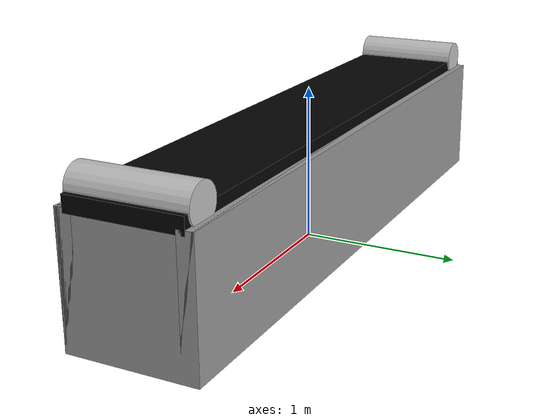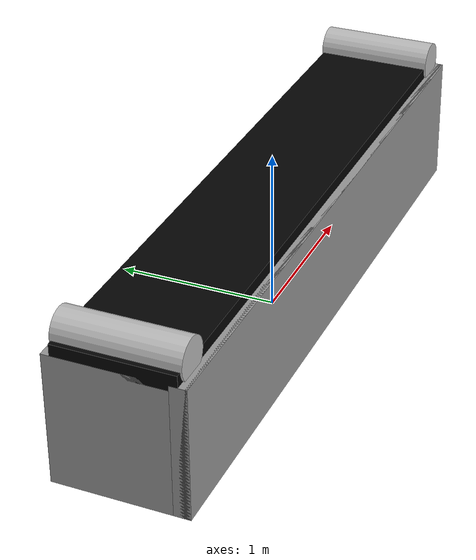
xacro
<?xml version="1.0"?>

<robot xmlns:xacro="http://www.ros.org/wiki/xacro"
       name="conveyor">

  <!-- ================= MATERIALS ================= -->

  <material name="frame_material">
    <color rgba="0.60 0.60 0.60 1"/>
  </material>

  <material name="belt_material">
    <color rgba="0.015 0.015 0.015 1"/>
  </material>

  <material name="roller_material">
    <color rgba="0.75 0.75 0.75 1"/>
  </material>

  <!-- ================= WORLD ================= -->
  <link name="world"/>

  <!-- ================= BASE ================= -->

  <link name="conveyor_base">
    <inertial>
      <mass value="10.0"/>
      <origin xyz="0 0 0.4"/>
      <inertia
        ixx="0.60"
        ixy="0"
        ixz="0"
        iyy="13.35"
        iyz="0"
        izz="13.35"/>
    </inertial>

    <visual>
      <origin xyz="0 0 0.4"/>
      <geometry>
        <box size="4.0 0.8 0.8"/>
      </geometry>
      <material name="frame_material"/>
    </visual>

    <collision>
      <origin xyz="0 0 0.4"/>
      <geometry>
        <box size="4.0 0.8 0.8"/>
      </geometry>
    </collision>
  </link>

  <!-- ================= FIX CONVEYOR TO WORLD ================= -->

  <joint name="conveyor_world_joint" type="fixed">
    <parent link="world"/>
    <child link="conveyor_base"/>
    <origin xyz="0 0 0" rpy="0 0 0"/>
  </joint>

  <!-- ================= BELT ================= -->

  <link name="belt">

    <inertial>
      <mass value="8.0"/>
      <origin xyz="0 0 0"/>
      <inertia
        ixx="0.34"
        ixy="0"
        ixz="0"
        iyy="10.67"
        iyz="0"
        izz="10.67"/>
    </inertial>

    <visual>
      <geometry>
        <box size="4.0 0.7 0.1"/>
      </geometry>
      <material name="belt_material"/>
    </visual>

    <collision>
      <geometry>
        <box size="4.0 0.7 0.1"/>
      </geometry>

      <surface>
        <friction>
          <ode>
            <mu>5.0</mu>
            <mu2>5.0</mu2>
          </ode>
        </friction>
      </surface>
    </collision>

  </link>

  <joint name="belt_joint" type="fixed">
    <parent link="conveyor_base"/>
    <child link="belt"/>
    <origin xyz="0 0 0.82" rpy="0 0 0"/>
  </joint>

  <!-- ================= LEFT FRAME ================= -->

  <link name="left_frame">

    <inertial>
      <mass value="5.0"/>
      <origin xyz="0 0 0"/>
      <inertia
        ixx="0.347"
        ixy="0"
        ixz="0"
        iyy="6.67"
        iyz="0"
        izz="6.67"/>
    </inertial>

    <visual>
      <geometry>
        <box size="4.0 0.1 0.8"/>
      </geometry>
      <material name="frame_material"/>
    </visual>

    <collision>
      <geometry>
        <box size="4.0 0.1 0.8"/>
      </geometry>
    </collision>

  </link>

  <joint name="left_frame_joint" type="fixed">
    <parent link="conveyor_base"/>
    <child link="left_frame"/>
    <origin xyz="0 0.35 0.4" rpy="0 0 0"/>
  </joint>

  <!-- ================= RIGHT FRAME ================= -->

  <link name="right_frame">

    <inertial>
      <mass value="5.0"/>
      <origin xyz="0 0 0"/>
      <inertia
        ixx="0.347"
        ixy="0"
        ixz="0"
        iyy="6.67"
        iyz="0"
        izz="6.67"/>
    </inertial>

    <visual>
      <geometry>
        <box size="4.0 0.1 0.8"/>
      </geometry>
      <material name="frame_material"/>
    </visual>

    <collision>
      <geometry>
        <box size="4.0 0.1 0.8"/>
      </geometry>
    </collision>

  </link>

  <joint name="right_frame_joint" type="fixed">
    <parent link="conveyor_base"/>
    <child link="right_frame"/>
    <origin xyz="0 -0.35 0.4" rpy="0 0 0"/>
  </joint>

  <!-- ================= FRONT ROLLER ================= -->

  <link name="front_roller">

    <inertial>
      <mass value="2.0"/>
      <origin xyz="0 0 0"/>
      <inertia
        ixx="0.095"
        ixy="0"
        ixz="0"
        iyy="0.014"
        iyz="0"
        izz="0.095"/>
    </inertial>

    <visual>
      <geometry>
        <cylinder radius="0.12" length="0.72"/>
      </geometry>
      <material name="roller_material"/>
    </visual>

    <collision>
      <geometry>
        <cylinder radius="0.12" length="0.72"/>
      </geometry>
    </collision>

  </link>

  <joint name="front_roller_joint" type="continuous">
    <parent link="conveyor_base"/>
    <child link="front_roller"/>
    <origin xyz="-1.85 0 0.88" rpy="1.5708 0 0"/>
    <axis xyz="0 1 0"/>
  </joint>

  <!-- ================= REAR ROLLER ================= -->

  <link name="rear_roller">

    <inertial>
      <mass value="2.0"/>
      <origin xyz="0 0 0"/>
      <inertia
        ixx="0.095"
        ixy="0"
        ixz="0"
        iyy="0.014"
        iyz="0"
        izz="0.095"/>
    </inertial>

    <visual>
      <geometry>
        <cylinder radius="0.12" length="0.72"/>
      </geometry>
      <material name="roller_material"/>
    </visual>

    <collision>
      <geometry>
        <cylinder radius="0.12" length="0.72"/>
      </geometry>
    </collision>

  </link>

  <joint name="rear_roller_joint" type="continuous">
    <parent link="conveyor_base"/>
    <child link="rear_roller"/>
    <origin xyz="1.85 0 0.88" rpy="1.5708 0 0"/>
    <axis xyz="0 1 0"/>
  </joint>

  <!-- ================= ROS 2 CONTROL ================= -->

  <ros2_control name="ConveyorSystem" type="system">

    <hardware>
      <plugin>gazebo_ros2_control/GazeboSystem</plugin>
    </hardware>

    <joint name="front_roller_joint">
      <command_interface name="velocity"/>
      <state_interface name="position"/>
      <state_interface name="velocity"/>
    </joint>

    <joint name="rear_roller_joint">
      <command_interface name="velocity"/>
      <state_interface name="position"/>
      <state_interface name="velocity"/>
    </joint>

  </ros2_control>

  <!-- ================= GAZEBO ROS 2 CONTROL ================= -->

  <gazebo reference="conveyor_base">
    <material>Gazebo/Grey</material>
  </gazebo>

  <gazebo reference="belt">
    <material>Gazebo/Black</material>
  </gazebo>

  <gazebo reference="left_frame">
    <material>Gazebo/Grey</material>
  </gazebo>

  <gazebo reference="right_frame">
    <material>Gazebo/Grey</material>
  </gazebo>

  <gazebo reference="front_roller">
    <material>Gazebo/LightGrey</material>
  </gazebo>

  <gazebo reference="rear_roller">
    <material>Gazebo/LightGrey</material>
  </gazebo>

  <gazebo>
    <plugin
      name="gazebo_ros2_control_conveyor"
      filename="libgazebo_ros2_control.so">

      <robot_param>robot_description</robot_param>
      <robot_param_node>robot_state_publisher</robot_param_node>

      <parameters>
        /home/prachi/assembly_line_ws/install/assembly_line/share/assembly_line/config/conveyor_controllers.yaml
      </parameters>

      <controller_manager_name>controller_manager</controller_manager_name>

    </plugin>
  </gazebo>

</robot>
